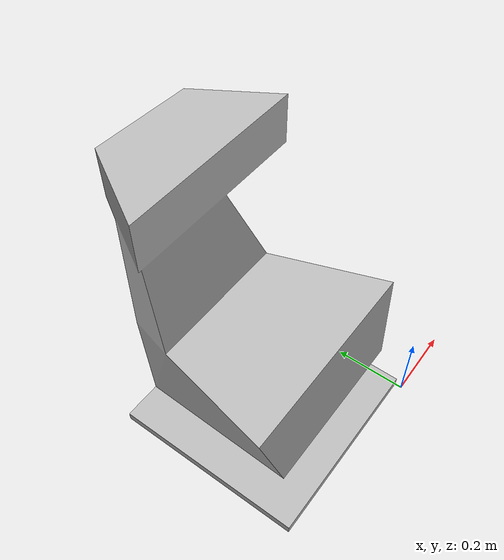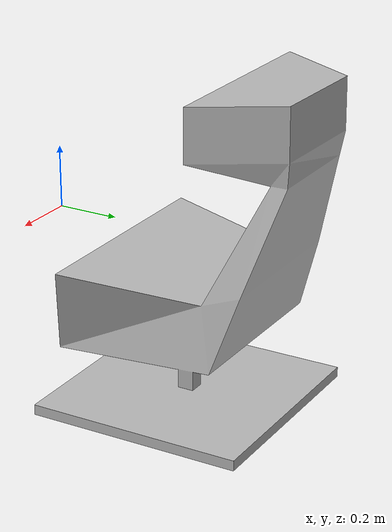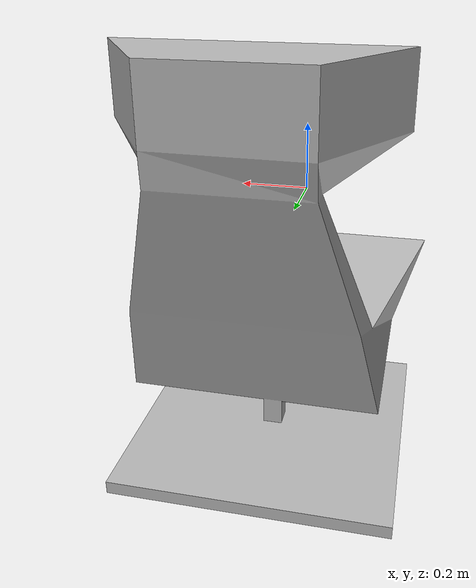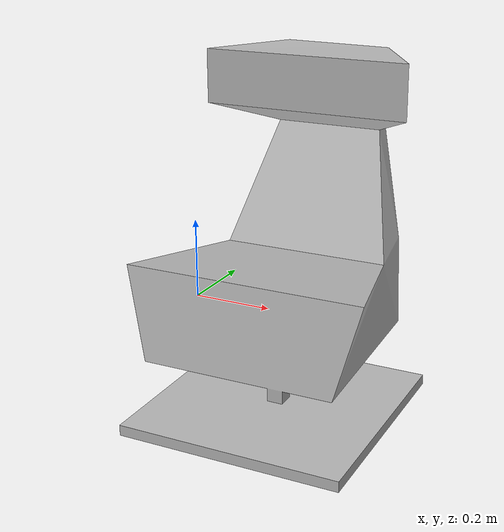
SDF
<?xml version='1.0'?>
<sdf version='1.5'>
    <model name="403_complex_chair">
        <pose>0 0 0 0 0 0</pose>
        <static>false</static>
        <link name='model_body'>
            <visual name="visual">
                <geometry>
                    <mesh>
                        <uri>model://rs_gazebo/meshes/ss_hq4/403_complex_chair/403_complex_chair_visual.dae</uri>
                        <scale>1 1 1</scale>
                    </mesh>
                </geometry>
            </visual>

            <collision name="collision">
                <geometry>
                    <mesh>
                        <uri>model://rs_gazebo/meshes/ss_hq4/403_complex_chair/403_complex_chair_collision.stl</uri>
                        <scale>1 1 1</scale>
                    </mesh>
                </geometry>
            </collision>

            <inertial>
                <pose> 0 0 0 0 0 0</pose>
                <inertia>
                    <ixx>1.46</ixx>
                    <ixy>0</ixy>
                    <ixz>0</ixz>
                    <iyy>1.57</iyy>
                    <iyz>0</iyz>
                    <izz>0.61</izz>
                </inertia>
                <mass>20.0</mass>
            </inertial>
        </link>
    </model>
</sdf>
